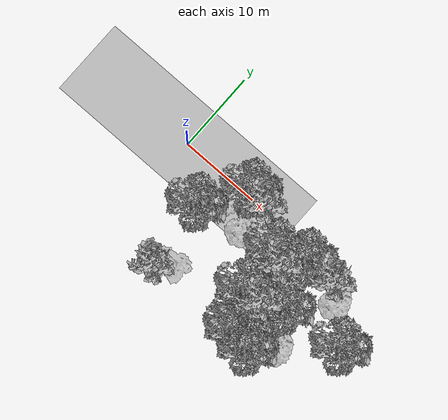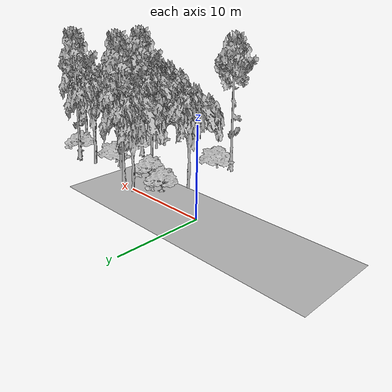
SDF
<sdf version="1.7">
 <world name="default">
  <model name="ground_plane">
   <static>1</static>
   <link name="link">
    <collision name="collision">
     <pose>-50 0 0 0 -0 0</pose>
     <geometry><plane><normal>0 0 1</normal><size>100 100</size></plane></geometry>
     <surface><contact><ode><min_depth>0.01</min_depth><max_vel>0</max_vel></ode></contact></surface>
    </collision>
    <visual name="grass">
     <cast_shadows>0</cast_shadows>
     <geometry>
      <mesh>
       <scale>0.5814285714285714 0.18142857142857144 0.1</scale>
       <uri>file://grass_plane/meshes/grass_plane.dae</uri>
      </mesh>
     </geometry>
    </visual>
   </link>
  </model>
  <model name="Tree 28">
   <static>1</static>
   <pose>25.04193544505364 -2.8722364656625743 0 1.57079 -0 0</pose>
   <link name="link">
    <collision name="collision">
     <geometry><mesh><scale>4 2.5 4</scale><uri>model://tree_1/meshes/tree_1.obj</uri></mesh></geometry>
    </collision>
    <visual name="visual">
     <geometry><mesh><scale>4 2.5 4</scale><uri>model://tree_1/meshes/tree_1.obj</uri></mesh></geometry>
    </visual>
   </link>
  </model>
  <model name="Tree 30">
   <static>1</static>
   <pose>19.5493914912514 -1.5999695103256109 0 1.57079 -0 0</pose>
   <link name="link">
    <collision name="collision">
     <geometry><mesh><scale>3.5 5 3.5</scale><uri>model://tree_2/meshes/tree_2.obj</uri></mesh></geometry>
    </collision>
    <visual name="visual">
     <geometry><mesh><scale>3.5 5 3.5</scale><uri>model://tree_2/meshes/tree_2.obj</uri></mesh></geometry>
    </visual>
   </link>
  </model>
  <model name="Tree 34">
   <static>1</static>
   <pose>23.457838525932445 -1.7492071314287436 0 1.57079 -0 0</pose>
   <link name="link">
    <collision name="collision">
     <geometry><mesh><scale>3.5 5 3.5</scale><uri>model://tree_9/meshes/tree_9.obj</uri></mesh></geometry>
    </collision>
    <visual name="visual">
     <geometry><mesh><scale>3.5 5 3.5</scale><uri>model://tree_9/meshes/tree_9.obj</uri></mesh></geometry>
    </visual>
   </link>
  </model>
  <model name="Tree 36">
   <static>1</static>
   <pose>16.069035292341454 -3.057705988287557 0 1.57079 -0 0</pose>
   <link name="link">
    <collision name="collision">
     <geometry><mesh><scale>3.5 5 3.5</scale><uri>model://tree_2/meshes/tree_2.obj</uri></mesh></geometry>
    </collision>
    <visual name="visual">
     <geometry><mesh><scale>3.5 5 3.5</scale><uri>model://tree_2/meshes/tree_2.obj</uri></mesh></geometry>
    </visual>
   </link>
  </model>
  <model name="Tree 53">
   <static>1</static>
   <pose>6.995886372756587 -13.656083849280837 0 1.57079 -0 0</pose>
   <link name="link">
    <collision name="collision">
     <geometry><mesh><scale>3.5 5 3.5</scale><uri>model://tree_9/meshes/tree_9.obj</uri></mesh></geometry>
    </collision>
    <visual name="visual">
     <geometry><mesh><scale>3.5 5 3.5</scale><uri>model://tree_9/meshes/tree_9.obj</uri></mesh></geometry>
    </visual>
   </link>
  </model>
  <model name="Tree 59">
   <static>1</static>
   <pose>5.999779488540028 -5.039655490214223 0 1.57079 -0 0</pose>
   <link name="link">
    <collision name="collision">
     <geometry><mesh><scale>3.5 5 3.5</scale><uri>model://tree_2/meshes/tree_2.obj</uri></mesh></geometry>
    </collision>
    <visual name="visual">
     <geometry><mesh><scale>3.5 5 3.5</scale><uri>model://tree_2/meshes/tree_2.obj</uri></mesh></geometry>
    </visual>
   </link>
  </model>
  <model name="Tree 67">
   <static>1</static>
   <pose>18.732469026211234 -8.743708731428107 0 1.57079 -0 0</pose>
   <link name="link">
    <collision name="collision">
     <geometry><mesh><scale>3.5 5 3.5</scale><uri>model://tree_9/meshes/tree_9.obj</uri></mesh></geometry>
    </collision>
    <visual name="visual">
     <geometry><mesh><scale>3.5 5 3.5</scale><uri>model://tree_9/meshes/tree_9.obj</uri></mesh></geometry>
    </visual>
   </link>
  </model>
  <model name="Tree 68">
   <static>1</static>
   <pose>7.478915784512829 -2.1178034794931886 0 1.57079 -0 0</pose>
   <link name="link">
    <collision name="collision">
     <geometry><mesh><scale>4 2.5 4</scale><uri>model://tree_1/meshes/tree_1.obj</uri></mesh></geometry>
    </collision>
    <visual name="visual">
     <geometry><mesh><scale>4 2.5 4</scale><uri>model://tree_1/meshes/tree_1.obj</uri></mesh></geometry>
    </visual>
   </link>
  </model>
  <model name="Tree 74">
   <static>1</static>
   <pose>7.950719099601926 -12.074482936224104 0 1.57079 -0 0</pose>
   <link name="link">
    <collision name="collision">
     <geometry><mesh><scale>3 2 3</scale><uri>model://tree_3/meshes/tree_3.obj</uri></mesh></geometry>
    </collision>
    <visual name="visual">
     <geometry><mesh><scale>3 2 3</scale><uri>model://tree_3/meshes/tree_3.obj</uri></mesh></geometry>
    </visual>
   </link>
  </model>
  <model name="Tree 87">
   <static>1</static>
   <pose>18.581582926868194 -12.891456419910812 0 1.57079 -0 0</pose>
   <link name="link">
    <collision name="collision">
     <geometry><mesh><scale>3.5 5 3.5</scale><uri>model://tree_2/meshes/tree_2.obj</uri></mesh></geometry>
    </collision>
    <visual name="visual">
     <geometry><mesh><scale>3.5 5 3.5</scale><uri>model://tree_2/meshes/tree_2.obj</uri></mesh></geometry>
    </visual>
   </link>
  </model>
  <model name="Tree 110">
   <static>1</static>
   <pose>19.819501014072543 -12.423177375696724 0 1.57079 -0 0</pose>
   <link name="link">
    <collision name="collision">
     <geometry><mesh><scale>3 2 3</scale><uri>model://tree_3/meshes/tree_3.obj</uri></mesh></geometry>
    </collision>
    <visual name="visual">
     <geometry><mesh><scale>3 2 3</scale><uri>model://tree_3/meshes/tree_3.obj</uri></mesh></geometry>
    </visual>
   </link>
  </model>
  <model name="Tree 113">
   <static>1</static>
   <pose>11.944309168160409 -0.19158163490399538 0 1.57079 -0 0</pose>
   <link name="link">
    <collision name="collision">
     <geometry><mesh><scale>3.5 5 3.5</scale><uri>model://tree_9/meshes/tree_9.obj</uri></mesh></geometry>
    </collision>
    <visual name="visual">
     <geometry><mesh><scale>3.5 5 3.5</scale><uri>model://tree_9/meshes/tree_9.obj</uri></mesh></geometry>
    </visual>
   </link>
  </model>
  <model name="Tree 122">
   <static>1</static>
   <pose>18.364772066625378 -3.9753424537743136 0 1.57079 -0 0</pose>
   <link name="link">
    <collision name="collision">
     <geometry><mesh><scale>3 2 3</scale><uri>model://tree_3/meshes/tree_3.obj</uri></mesh></geometry>
    </collision>
    <visual name="visual">
     <geometry><mesh><scale>3 2 3</scale><uri>model://tree_3/meshes/tree_3.obj</uri></mesh></geometry>
    </visual>
   </link>
  </model>
  <model name="Tree 129">
   <static>1</static>
   <pose>23.388916991368845 -11.248785967693339 0 1.57079 -0 0</pose>
   <link name="link">
    <collision name="collision">
     <geometry><mesh><scale>4 2.5 4</scale><uri>model://tree_1/meshes/tree_1.obj</uri></mesh></geometry>
    </collision>
    <visual name="visual">
     <geometry><mesh><scale>4 2.5 4</scale><uri>model://tree_1/meshes/tree_1.obj</uri></mesh></geometry>
    </visual>
   </link>
  </model>
  <model name="Tree 135">
   <static>1</static>
   <pose>21.21658670114431 -7.340402746676177 0 1.57079 -0 0</pose>
   <link name="link">
    <collision name="collision">
     <geometry><mesh><scale>3.5 5 3.5</scale><uri>model://tree_2/meshes/tree_2.obj</uri></mesh></geometry>
    </collision>
    <visual name="visual">
     <geometry><mesh><scale>3.5 5 3.5</scale><uri>model://tree_2/meshes/tree_2.obj</uri></mesh></geometry>
    </visual>
   </link>
  </model>
  <model name="Tree 139">
   <static>1</static>
   <pose>11.267136459644057 -3.551856142747191 0 1.57079 -0 0</pose>
   <link name="link">
    <collision name="collision">
     <geometry><mesh><scale>4 2.5 4</scale><uri>model://tree_1/meshes/tree_1.obj</uri></mesh></geometry>
    </collision>
    <visual name="visual">
     <geometry><mesh><scale>4 2.5 4</scale><uri>model://tree_1/meshes/tree_1.obj</uri></mesh></geometry>
    </visual>
   </link>
  </model>
  <model name="Tree 141">
   <static>1</static>
   <pose>28.963328542876823 -6.616514941242746 0 1.57079 -0 0</pose>
   <link name="link">
    <collision name="collision">
     <geometry><mesh><scale>3.5 5 3.5</scale><uri>model://tree_2/meshes/tree_2.obj</uri></mesh></geometry>
    </collision>
    <visual name="visual">
     <geometry><mesh><scale>3.5 5 3.5</scale><uri>model://tree_2/meshes/tree_2.obj</uri></mesh></geometry>
    </visual>
   </link>
  </model>
  <model name="Tree 142">
   <static>1</static>
   <pose>18.36992060925526 -11.172768248504857 0 1.57079 -0 0</pose>
   <link name="link">
    <collision name="collision">
     <geometry><mesh><scale>3.5 5 3.5</scale><uri>model://tree_2/meshes/tree_2.obj</uri></mesh></geometry>
    </collision>
    <visual name="visual">
     <geometry><mesh><scale>3.5 5 3.5</scale><uri>model://tree_2/meshes/tree_2.obj</uri></mesh></geometry>
    </visual>
   </link>
  </model>
  <model name="Tree 155">
   <static>1</static>
   <pose>17.67550099590143 -4.172218540605803 0 1.57079 -0 0</pose>
   <link name="link">
    <collision name="collision">
     <geometry><mesh><scale>3.5 5 3.5</scale><uri>model://tree_9/meshes/tree_9.obj</uri></mesh></geometry>
    </collision>
    <visual name="visual">
     <geometry><mesh><scale>3.5 5 3.5</scale><uri>model://tree_9/meshes/tree_9.obj</uri></mesh></geometry>
    </visual>
   </link>
  </model>
  <model name="Tree 160">
   <static>1</static>
   <pose>20.17600521587609 -9.251914618374627 0 1.57079 -0 0</pose>
   <link name="link">
    <collision name="collision">
     <geometry><mesh><scale>3 2 3</scale><uri>model://tree_3/meshes/tree_3.obj</uri></mesh></geometry>
    </collision>
    <visual name="visual">
     <geometry><mesh><scale>3 2 3</scale><uri>model://tree_3/meshes/tree_3.obj</uri></mesh></geometry>
    </visual>
   </link>
  </model>
  <model name="Tree 172">
   <static>1</static>
   <pose>9.606271512204863 0.22986700755177125 0 1.57079 -0 0</pose>
   <link name="link">
    <collision name="collision">
     <geometry><mesh><scale>3.5 5 3.5</scale><uri>model://tree_2/meshes/tree_2.obj</uri></mesh></geometry>
    </collision>
    <visual name="visual">
     <geometry><mesh><scale>3.5 5 3.5</scale><uri>model://tree_2/meshes/tree_2.obj</uri></mesh></geometry>
    </visual>
   </link>
  </model>
  <model name="Tree 175">
   <static>1</static>
   <pose>21.057586735180564 -13.584398329869472 0 1.57079 -0 0</pose>
   <link name="link">
    <collision name="collision">
     <geometry><mesh><scale>3.5 5 3.5</scale><uri>model://tree_2/meshes/tree_2.obj</uri></mesh></geometry>
    </collision>
    <visual name="visual">
     <geometry><mesh><scale>3.5 5 3.5</scale><uri>model://tree_2/meshes/tree_2.obj</uri></mesh></geometry>
    </visual>
   </link>
  </model>
  <model name="Tree 176">
   <static>1</static>
   <pose>16.49953114003823 -8.619229819697928 0 1.57079 -0 0</pose>
   <link name="link">
    <collision name="collision">
     <geometry><mesh><scale>3.5 5 3.5</scale><uri>model://tree_2/meshes/tree_2.obj</uri></mesh></geometry>
    </collision>
    <visual name="visual">
     <geometry><mesh><scale>3.5 5 3.5</scale><uri>model://tree_2/meshes/tree_2.obj</uri></mesh></geometry>
    </visual>
   </link>
  </model>
 </world>
</sdf>
